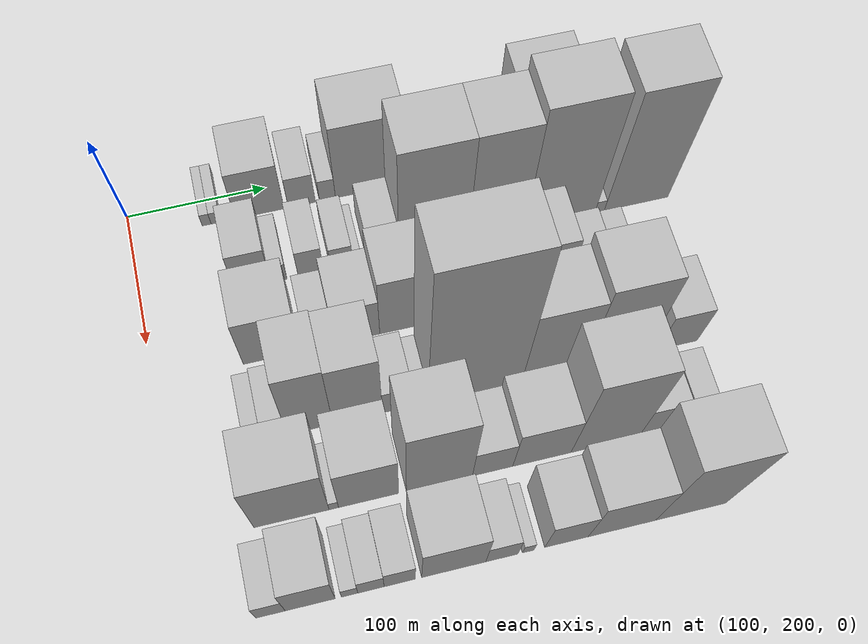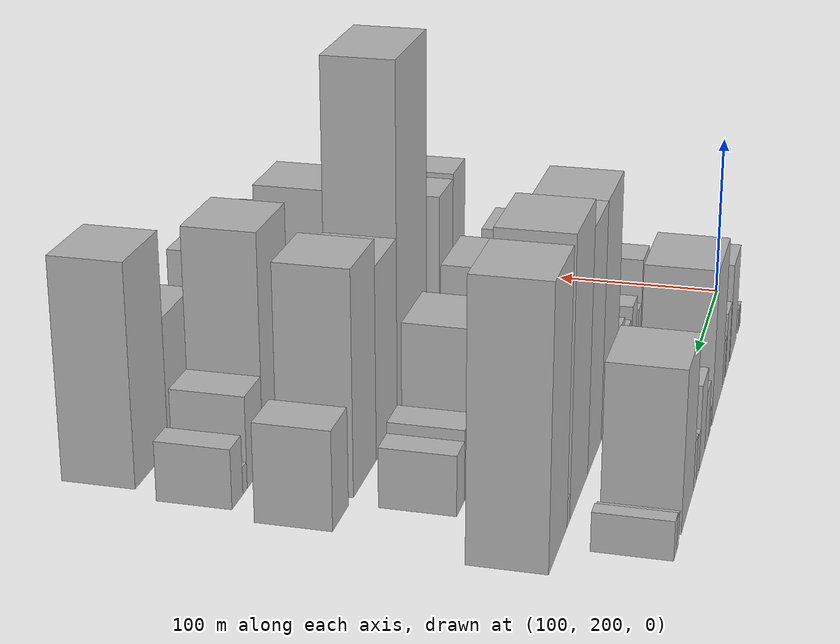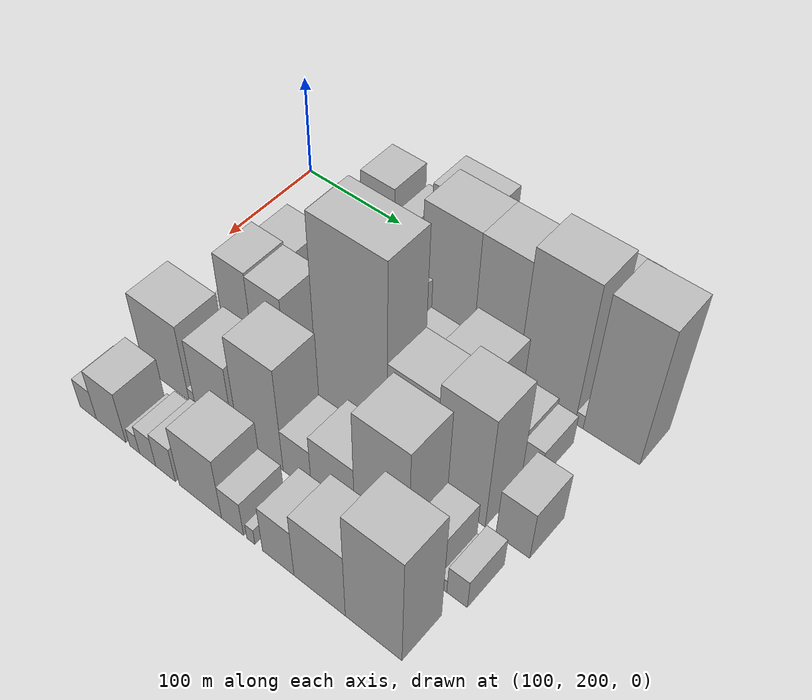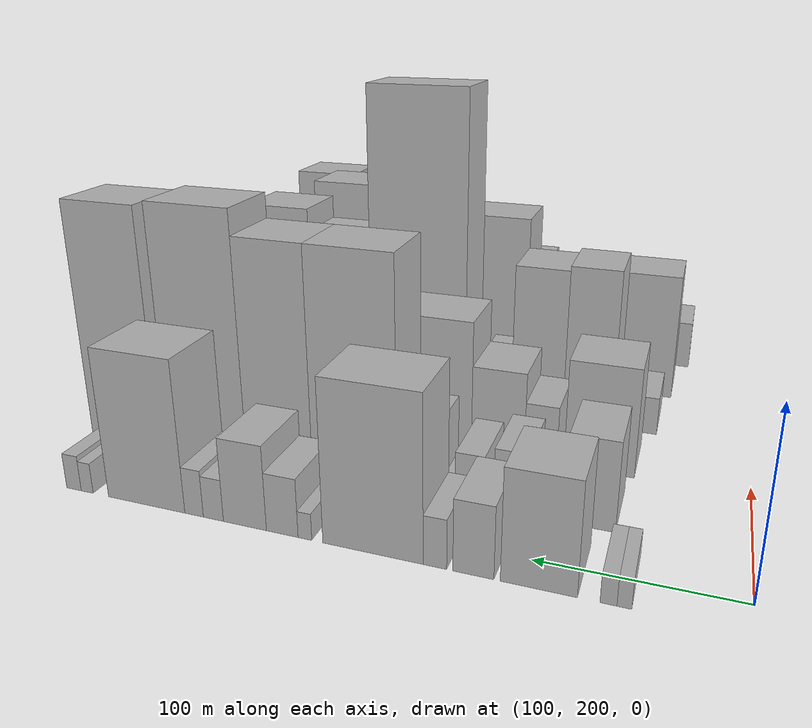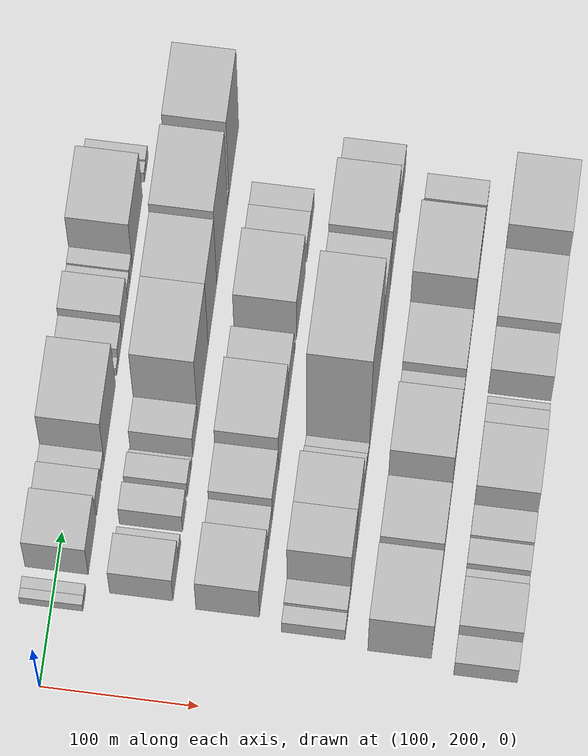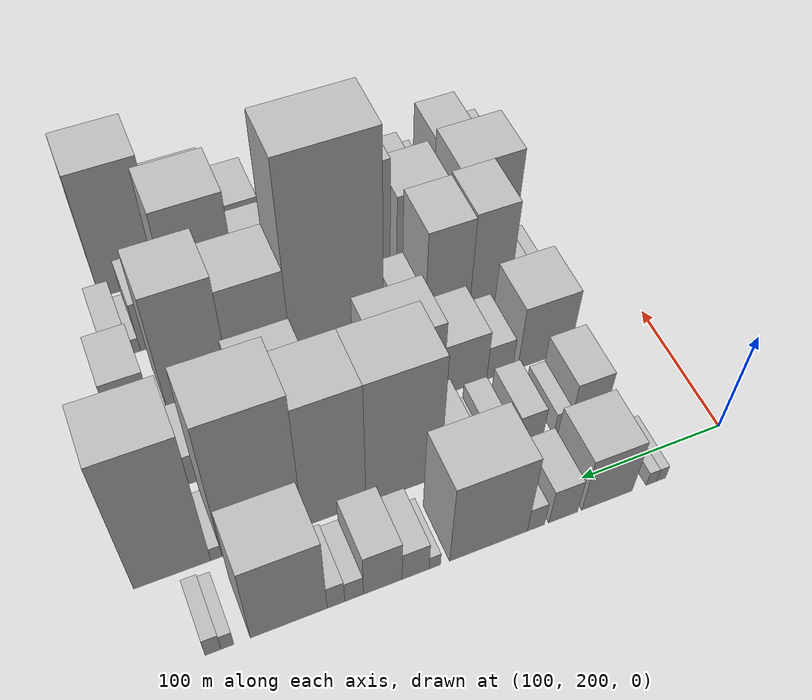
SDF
<sdf version="1.6">
 <world name="default">
  <model name="building_34">
   <static>1</static>
   <pose>100.0000 254.5305 0 0.000000 0.000000 0.000000</pose>
   <link name="link">
    <pose>0 0 7.50 0 0 0</pose>
    <collision name="collision"><geometry><box><size>40.0000 6.4407 15.0000</size></box></geometry></collision>
    <visual name="visual">
     <cast_shadows>0</cast_shadows>
     <geometry><box><size>40.0000 6.4407 15.0000</size></box></geometry>
     <material>
      <script>
       <uri>model://HANNAS_wall/materials/scripts</uri>
       <uri>model://HANNAS_wall/materials/textures</uri>
       <name>vrc/HANNAS_wall</name>
      </script>
     </material>
    </visual>
   </link>
  </model>
  <model name="building_35">
   <static>1</static>
   <pose>100.0000 261.4549 0 0.000000 0.000000 0.000000</pose>
   <link name="link">
    <pose>0 0 7.50 0 0 0</pose>
    <collision name="collision"><geometry><box><size>40.0000 7.4081 15.0000</size></box></geometry></collision>
    <visual name="visual">
     <cast_shadows>0</cast_shadows>
     <geometry><box><size>40.0000 7.4081 15.0000</size></box></geometry>
     <material>
      <script>
       <uri>model://HANNAS_wall/materials/scripts</uri>
       <uri>model://HANNAS_wall/materials/textures</uri>
       <name>vrc/HANNAS_wall</name>
      </script>
     </material>
    </visual>
   </link>
  </model>
  <model name="building_36">
   <static>1</static>
   <pose>100.0000 292.9028 0 0.000000 0.000000 0.000000</pose>
   <link name="link">
    <pose>0 0 30.00 0 0 0</pose>
    <collision name="collision"><geometry><box><size>40.0000 35.4877 60.0000</size></box></geometry></collision>
    <visual name="visual">
     <cast_shadows>0</cast_shadows>
     <geometry><box><size>40.0000 35.4877 60.0000</size></box></geometry>
     <material>
      <script>
       <uri>model://HANNAS_wall/materials/scripts</uri>
       <uri>model://HANNAS_wall/materials/textures</uri>
       <name>vrc/HANNAS_wall</name>
      </script>
     </material>
    </visual>
   </link>
  </model>
  <model name="building_37">
   <static>1</static>
   <pose>100.0000 323.5563 0 0.000000 0.000000 0.000000</pose>
   <link name="link">
    <pose>0 0 19.50 0 0 0</pose>
    <collision name="collision"><geometry><box><size>40.0000 19.8193 39.0000</size></box></geometry></collision>
    <visual name="visual">
     <cast_shadows>0</cast_shadows>
     <geometry><box><size>40.0000 19.8193 39.0000</size></box></geometry>
     <material>
      <script>
       <uri>model://HANNAS_wall/materials/scripts</uri>
       <uri>model://HANNAS_wall/materials/textures</uri>
       <name>vrc/HANNAS_wall</name>
      </script>
     </material>
    </visual>
   </link>
  </model>
  <model name="building_38">
   <static>1</static>
   <pose>100.0000 342.3255 0 0.000000 0.000000 0.000000</pose>
   <link name="link">
    <pose>0 0 13.50 0 0 0</pose>
    <collision name="collision"><geometry><box><size>40.0000 11.7192 27.0000</size></box></geometry></collision>
    <visual name="visual">
     <cast_shadows>0</cast_shadows>
     <geometry><box><size>40.0000 11.7192 27.0000</size></box></geometry>
     <material>
      <script>
       <uri>model://HANNAS_wall/materials/scripts</uri>
       <uri>model://HANNAS_wall/materials/textures</uri>
       <name>vrc/HANNAS_wall</name>
      </script>
     </material>
    </visual>
   </link>
  </model>
  <model name="building_39">
   <static>1</static>
   <pose>100.0000 374.2217 0 0.000000 0.000000 0.000000</pose>
   <link name="link">
    <pose>0 0 45.00 0 0 0</pose>
    <collision name="collision"><geometry><box><size>40.0000 52.0733 90.0000</size></box></geometry></collision>
    <visual name="visual">
     <cast_shadows>0</cast_shadows>
     <geometry><box><size>40.0000 52.0733 90.0000</size></box></geometry>
     <material>
      <script>
       <uri>model://HANNAS_wall/materials/scripts</uri>
       <uri>model://HANNAS_wall/materials/textures</uri>
       <name>vrc/HANNAS_wall</name>
      </script>
     </material>
    </visual>
   </link>
  </model>
  <model name="building_40">
   <static>1</static>
   <pose>100.0000 409.9997 0 0.000000 0.000000 0.000000</pose>
   <link name="link">
    <pose>0 0 7.50 0 0 0</pose>
    <collision name="collision"><geometry><box><size>40.0000 7.4827 15.0000</size></box></geometry></collision>
    <visual name="visual">
     <cast_shadows>0</cast_shadows>
     <geometry><box><size>40.0000 7.4827 15.0000</size></box></geometry>
     <material>
      <script>
       <uri>model://HANNAS_wall/materials/scripts</uri>
       <uri>model://HANNAS_wall/materials/textures</uri>
       <name>vrc/HANNAS_wall</name>
      </script>
     </material>
    </visual>
   </link>
  </model>
  <model name="building_41">
   <static>1</static>
   <pose>100.0000 422.5605 0 0.000000 0.000000 0.000000</pose>
   <link name="link">
    <pose>0 0 16.50 0 0 0</pose>
    <collision name="collision"><geometry><box><size>40.0000 17.6389 33.0000</size></box></geometry></collision>
    <visual name="visual">
     <cast_shadows>0</cast_shadows>
     <geometry><box><size>40.0000 17.6389 33.0000</size></box></geometry>
     <material>
      <script>
       <uri>model://HANNAS_wall/materials/scripts</uri>
       <uri>model://HANNAS_wall/materials/textures</uri>
       <name>vrc/HANNAS_wall</name>
      </script>
     </material>
    </visual>
   </link>
  </model>
  <model name="building_42">
   <static>1</static>
   <pose>100.0000 443.7260 0 0.000000 0.000000 0.000000</pose>
   <link name="link">
    <pose>0 0 24.00 0 0 0</pose>
    <collision name="collision"><geometry><box><size>40.0000 24.6920 48.0000</size></box></geometry></collision>
    <visual name="visual">
     <cast_shadows>0</cast_shadows>
     <geometry><box><size>40.0000 24.6920 48.0000</size></box></geometry>
     <material>
      <script>
       <uri>model://HANNAS_wall/materials/scripts</uri>
       <uri>model://HANNAS_wall/materials/textures</uri>
       <name>vrc/HANNAS_wall</name>
      </script>
     </material>
    </visual>
   </link>
  </model>
  <model name="building_43">
   <static>1</static>
   <pose>100.0000 461.9823 0 0.000000 0.000000 0.000000</pose>
   <link name="link">
    <pose>0 0 12.00 0 0 0</pose>
    <collision name="collision"><geometry><box><size>40.0000 11.8207 24.0000</size></box></geometry></collision>
    <visual name="visual">
     <cast_shadows>0</cast_shadows>
     <geometry><box><size>40.0000 11.8207 24.0000</size></box></geometry>
     <material>
      <script>
       <uri>model://HANNAS_wall/materials/scripts</uri>
       <uri>model://HANNAS_wall/materials/textures</uri>
       <name>vrc/HANNAS_wall</name>
      </script>
     </material>
    </visual>
   </link>
  </model>
  <model name="building_44">
   <static>1</static>
   <pose>100.0000 473.4352 0 0.000000 0.000000 0.000000</pose>
   <link name="link">
    <pose>0 0 13.50 0 0 0</pose>
    <collision name="collision"><geometry><box><size>40.0000 11.0850 27.0000</size></box></geometry></collision>
    <visual name="visual">
     <cast_shadows>0</cast_shadows>
     <geometry><box><size>40.0000 11.0850 27.0000</size></box></geometry>
     <material>
      <script>
       <uri>model://HANNAS_wall/materials/scripts</uri>
       <uri>model://HANNAS_wall/materials/textures</uri>
       <name>vrc/HANNAS_wall</name>
      </script>
     </material>
    </visual>
   </link>
  </model>
  <model name="building_45">
   <static>1</static>
   <pose>100.0000 502.7370 0 0.000000 0.000000 0.000000</pose>
   <link name="link">
    <pose>0 0 43.50 0 0 0</pose>
    <collision name="collision"><geometry><box><size>40.0000 47.5186 87.0000</size></box></geometry></collision>
    <visual name="visual">
     <cast_shadows>0</cast_shadows>
     <geometry><box><size>40.0000 47.5186 87.0000</size></box></geometry>
     <material>
      <script>
       <uri>model://HANNAS_wall/materials/scripts</uri>
       <uri>model://HANNAS_wall/materials/textures</uri>
       <name>vrc/HANNAS_wall</name>
      </script>
     </material>
    </visual>
   </link>
  </model>
  <model name="building_46">
   <static>1</static>
   <pose>100.0000 540.3720 0 0.000000 0.000000 0.000000</pose>
   <link name="link">
    <pose>0 0 9.00 0 0 0</pose>
    <collision name="collision"><geometry><box><size>40.0000 7.7514 18.0000</size></box></geometry></collision>
    <visual name="visual">
     <cast_shadows>0</cast_shadows>
     <geometry><box><size>40.0000 7.7514 18.0000</size></box></geometry>
     <material>
      <script>
       <uri>model://HANNAS_wall/materials/scripts</uri>
       <uri>model://HANNAS_wall/materials/textures</uri>
       <name>vrc/HANNAS_wall</name>
      </script>
     </material>
    </visual>
   </link>
  </model>
  <model name="building_47">
   <static>1</static>
   <pose>100.0000 549.0262 0 0.000000 0.000000 0.000000</pose>
   <link name="link">
    <pose>0 0 10.50 0 0 0</pose>
    <collision name="collision"><geometry><box><size>40.0000 9.5570 21.0000</size></box></geometry></collision>
    <visual name="visual">
     <cast_shadows>0</cast_shadows>
     <geometry><box><size>40.0000 9.5570 21.0000</size></box></geometry>
     <material>
      <script>
       <uri>model://HANNAS_wall/materials/scripts</uri>
       <uri>model://HANNAS_wall/materials/textures</uri>
       <name>vrc/HANNAS_wall</name>
      </script>
     </material>
    </visual>
   </link>
  </model>
  <model name="building_91">
   <static>1</static>
   <pose>155.0000 277.9467 0 0.000000 0.000000 0.000000</pose>
   <link name="link">
    <pose>0 0 25.50 0 0 0</pose>
    <collision name="collision"><geometry><box><size>40.0000 25.8244 51.0000</size></box></geometry></collision>
    <visual name="visual">
     <cast_shadows>0</cast_shadows>
     <geometry><box><size>40.0000 25.8244 51.0000</size></box></geometry>
     <material>
      <script>
       <uri>model://HANNAS_wall/materials/scripts</uri>
       <uri>model://HANNAS_wall/materials/textures</uri>
       <name>vrc/HANNAS_wall</name>
      </script>
     </material>
    </visual>
   </link>
  </model>
  <model name="building_92">
   <static>1</static>
   <pose>155.0000 296.4821 0 0.000000 0.000000 0.000000</pose>
   <link name="link">
    <pose>0 0 12.00 0 0 0</pose>
    <collision name="collision"><geometry><box><size>40.0000 11.2463 24.0000</size></box></geometry></collision>
    <visual name="visual">
     <cast_shadows>0</cast_shadows>
     <geometry><box><size>40.0000 11.2463 24.0000</size></box></geometry>
     <material>
      <script>
       <uri>model://HANNAS_wall/materials/scripts</uri>
       <uri>model://HANNAS_wall/materials/textures</uri>
       <name>vrc/HANNAS_wall</name>
      </script>
     </material>
    </visual>
   </link>
  </model>
  <model name="building_93">
   <static>1</static>
   <pose>155.0000 319.1369 0 0.000000 0.000000 0.000000</pose>
   <link name="link">
    <pose>0 0 18.00 0 0 0</pose>
    <collision name="collision"><geometry><box><size>40.0000 18.0633 36.0000</size></box></geometry></collision>
    <visual name="visual">
     <cast_shadows>0</cast_shadows>
     <geometry><box><size>40.0000 18.0633 36.0000</size></box></geometry>
     <material>
      <script>
       <uri>model://HANNAS_wall/materials/scripts</uri>
       <uri>model://HANNAS_wall/materials/textures</uri>
       <name>vrc/HANNAS_wall</name>
      </script>
     </material>
    </visual>
   </link>
  </model>
  <model name="building_94">
   <static>1</static>
   <pose>155.0000 341.1645 0 0.000000 0.000000 0.000000</pose>
   <link name="link">
    <pose>0 0 15.00 0 0 0</pose>
    <collision name="collision"><geometry><box><size>40.0000 15.9919 30.0000</size></box></geometry></collision>
    <visual name="visual">
     <cast_shadows>0</cast_shadows>
     <geometry><box><size>40.0000 15.9919 30.0000</size></box></geometry>
     <material>
      <script>
       <uri>model://HANNAS_wall/materials/scripts</uri>
       <uri>model://HANNAS_wall/materials/textures</uri>
       <name>vrc/HANNAS_wall</name>
      </script>
     </material>
    </visual>
   </link>
  </model>
  <model name="building_95">
   <static>1</static>
   <pose>155.0000 352.2150 0 0.000000 0.000000 0.000000</pose>
   <link name="link">
    <pose>0 0 7.50 0 0 0</pose>
    <collision name="collision"><geometry><box><size>40.0000 6.1090 15.0000</size></box></geometry></collision>
    <visual name="visual">
     <cast_shadows>0</cast_shadows>
     <geometry><box><size>40.0000 6.1090 15.0000</size></box></geometry>
     <material>
      <script>
       <uri>model://HANNAS_wall/materials/scripts</uri>
       <uri>model://HANNAS_wall/materials/textures</uri>
       <name>vrc/HANNAS_wall</name>
      </script>
     </material>
    </visual>
   </link>
  </model>
  <model name="building_96">
   <static>1</static>
   <pose>155.0000 370.6481 0 0.000000 0.000000 0.000000</pose>
   <link name="link">
    <pose>0 0 21.00 0 0 0</pose>
    <collision name="collision"><geometry><box><size>40.0000 22.7573 42.0000</size></box></geometry></collision>
    <visual name="visual">
     <cast_shadows>0</cast_shadows>
     <geometry><box><size>40.0000 22.7573 42.0000</size></box></geometry>
     <material>
      <script>
       <uri>model://HANNAS_wall/materials/scripts</uri>
       <uri>model://HANNAS_wall/materials/textures</uri>
       <name>vrc/HANNAS_wall</name>
      </script>
     </material>
    </visual>
   </link>
  </model>
  <model name="building_97">
   <static>1</static>
   <pose>155.0000 407.1984 0 0.000000 0.000000 0.000000</pose>
   <link name="link">
    <pose>0 0 67.50 0 0 0</pose>
    <collision name="collision"><geometry><box><size>40.0000 50.3432 135.0000</size></box></geometry></collision>
    <visual name="visual">
     <cast_shadows>0</cast_shadows>
     <geometry><box><size>40.0000 50.3432 135.0000</size></box></geometry>
     <material>
      <script>
       <uri>model://HANNAS_wall/materials/scripts</uri>
       <uri>model://HANNAS_wall/materials/textures</uri>
       <name>vrc/HANNAS_wall</name>
      </script>
     </material>
    </visual>
   </link>
  </model>
  <model name="building_98">
   <static>1</static>
   <pose>155.0000 453.1962 0 0.000000 0.000000 0.000000</pose>
   <link name="link">
    <pose>0 0 67.50 0 0 0</pose>
    <collision name="collision"><geometry><box><size>40.0000 41.6526 135.0000</size></box></geometry></collision>
    <visual name="visual">
     <cast_shadows>0</cast_shadows>
     <geometry><box><size>40.0000 41.6526 135.0000</size></box></geometry>
     <material>
      <script>
       <uri>model://HANNAS_wall/materials/scripts</uri>
       <uri>model://HANNAS_wall/materials/textures</uri>
       <name>vrc/HANNAS_wall</name>
      </script>
     </material>
    </visual>
   </link>
  </model>
  <model name="building_99">
   <static>1</static>
   <pose>155.0000 500.0469 0 0.000000 0.000000 0.000000</pose>
   <link name="link">
    <pose>0 0 75.00 0 0 0</pose>
    <collision name="collision"><geometry><box><size>40.0000 52.0488 150.0000</size></box></geometry></collision>
    <visual name="visual">
     <cast_shadows>0</cast_shadows>
     <geometry><box><size>40.0000 52.0488 150.0000</size></box></geometry>
     <material>
      <script>
       <uri>model://HANNAS_wall/materials/scripts</uri>
       <uri>model://HANNAS_wall/materials/textures</uri>
       <name>vrc/HANNAS_wall</name>
      </script>
     </material>
    </visual>
   </link>
  </model>
  <model name="building_100">
   <static>1</static>
   <pose>155.0000 529.6043 0 0.000000 0.000000 0.000000</pose>
   <link name="link">
    <pose>0 0 7.50 0 0 0</pose>
    <collision name="collision"><geometry><box><size>40.0000 7.0660 15.0000</size></box></geometry></collision>
    <visual name="visual">
     <cast_shadows>0</cast_shadows>
     <geometry><box><size>40.0000 7.0660 15.0000</size></box></geometry>
     <material>
      <script>
       <uri>model://HANNAS_wall/materials/scripts</uri>
       <uri>model://HANNAS_wall/materials/textures</uri>
       <name>vrc/HANNAS_wall</name>
      </script>
     </material>
    </visual>
   </link>
  </model>
  <model name="building_101">
   <static>1</static>
   <pose>155.0000 557.0498 0 0.000000 0.000000 0.000000</pose>
   <link name="link">
    <pose>0 0 73.50 0 0 0</pose>
    <collision name="collision"><geometry><box><size>40.0000 47.8251 147.0000</size></box></geometry></collision>
    <visual name="visual">
     <cast_shadows>0</cast_shadows>
     <geometry><box><size>40.0000 47.8251 147.0000</size></box></geometry>
     <material>
      <script>
       <uri>model://HANNAS_wall/materials/scripts</uri>
       <uri>model://HANNAS_wall/materials/textures</uri>
       <name>vrc/HANNAS_wall</name>
      </script>
     </material>
    </visual>
   </link>
  </model>
  <model name="building_143">
   <static>1</static>
   <pose>210.0000 281.2400 0 0.000000 0.000000 0.000000</pose>
   <link name="link">
    <pose>0 0 33.00 0 0 0</pose>
    <collision name="collision"><geometry><box><size>40.0000 39.5124 66.0000</size></box></geometry></collision>
    <visual name="visual">
     <cast_shadows>0</cast_shadows>
     <geometry><box><size>40.0000 39.5124 66.0000</size></box></geometry>
     <material>
      <script>
       <uri>model://HANNAS_wall/materials/scripts</uri>
       <uri>model://HANNAS_wall/materials/textures</uri>
       <name>vrc/HANNAS_wall</name>
      </script>
     </material>
    </visual>
   </link>
  </model>
  <model name="building_144">
   <static>1</static>
   <pose>210.0000 314.5279 0 0.000000 0.000000 0.000000</pose>
   <link name="link">
    <pose>0 0 18.00 0 0 0</pose>
    <collision name="collision"><geometry><box><size>40.0000 19.0634 36.0000</size></box></geometry></collision>
    <visual name="visual">
     <cast_shadows>0</cast_shadows>
     <geometry><box><size>40.0000 19.0634 36.0000</size></box></geometry>
     <material>
      <script>
       <uri>model://HANNAS_wall/materials/scripts</uri>
       <uri>model://HANNAS_wall/materials/textures</uri>
       <name>vrc/HANNAS_wall</name>
      </script>
     </material>
    </visual>
   </link>
  </model>
  <model name="building_145">
   <static>1</static>
   <pose>210.0000 339.9073 0 0.000000 0.000000 0.000000</pose>
   <link name="link">
    <pose>0 0 27.00 0 0 0</pose>
    <collision name="collision"><geometry><box><size>40.0000 31.6955 54.0000</size></box></geometry></collision>
    <visual name="visual">
     <cast_shadows>0</cast_shadows>
     <geometry><box><size>40.0000 31.6955 54.0000</size></box></geometry>
     <material>
      <script>
       <uri>model://HANNAS_wall/materials/scripts</uri>
       <uri>model://HANNAS_wall/materials/textures</uri>
       <name>vrc/HANNAS_wall</name>
      </script>
     </material>
    </visual>
   </link>
  </model>
  <model name="building_146">
   <static>1</static>
   <pose>210.0000 379.6658 0 0.000000 0.000000 0.000000</pose>
   <link name="link">
    <pose>0 0 40.50 0 0 0</pose>
    <collision name="collision"><geometry><box><size>40.0000 47.8214 81.0000</size></box></geometry></collision>
    <visual name="visual">
     <cast_shadows>0</cast_shadows>
     <geometry><box><size>40.0000 47.8214 81.0000</size></box></geometry>
     <material>
      <script>
       <uri>model://HANNAS_wall/materials/scripts</uri>
       <uri>model://HANNAS_wall/materials/textures</uri>
       <name>vrc/HANNAS_wall</name>
      </script>
     </material>
    </visual>
   </link>
  </model>
  <model name="building_147">
   <static>1</static>
   <pose>210.0000 418.2549 0 0.000000 0.000000 0.000000</pose>
   <link name="link">
    <pose>0 0 25.50 0 0 0</pose>
    <collision name="collision"><geometry><box><size>40.0000 29.3568 51.0000</size></box></geometry></collision>
    <visual name="visual">
     <cast_shadows>0</cast_shadows>
     <geometry><box><size>40.0000 29.3568 51.0000</size></box></geometry>
     <material>
      <script>
       <uri>model://HANNAS_wall/materials/scripts</uri>
       <uri>model://HANNAS_wall/materials/textures</uri>
       <name>vrc/HANNAS_wall</name>
      </script>
     </material>
    </visual>
   </link>
  </model>
  <model name="building_148">
   <static>1</static>
   <pose>210.0000 436.0573 0 0.000000 0.000000 0.000000</pose>
   <link name="link">
    <pose>0 0 7.50 0 0 0</pose>
    <collision name="collision"><geometry><box><size>40.0000 6.2479 15.0000</size></box></geometry></collision>
    <visual name="visual">
     <cast_shadows>0</cast_shadows>
     <geometry><box><size>40.0000 6.2479 15.0000</size></box></geometry>
     <material>
      <script>
       <uri>model://HANNAS_wall/materials/scripts</uri>
       <uri>model://HANNAS_wall/materials/textures</uri>
       <name>vrc/HANNAS_wall</name>
      </script>
     </material>
    </visual>
   </link>
  </model>
  <model name="building_149">
   <static>1</static>
   <pose>210.0000 466.2391 0 0.000000 0.000000 0.000000</pose>
   <link name="link">
    <pose>0 0 40.50 0 0 0</pose>
    <collision name="collision"><geometry><box><size>40.0000 44.1155 81.0000</size></box></geometry></collision>
    <visual name="visual">
     <cast_shadows>0</cast_shadows>
     <geometry><box><size>40.0000 44.1155 81.0000</size></box></geometry>
     <material>
      <script>
       <uri>model://HANNAS_wall/materials/scripts</uri>
       <uri>model://HANNAS_wall/materials/textures</uri>
       <name>vrc/HANNAS_wall</name>
      </script>
     </material>
    </visual>
   </link>
  </model>
  <model name="building_150">
   <static>1</static>
   <pose>210.0000 506.9416 0 0.000000 0.000000 0.000000</pose>
   <link name="link">
    <pose>0 0 19.50 0 0 0</pose>
    <collision name="collision"><geometry><box><size>40.0000 21.2896 39.0000</size></box></geometry></collision>
    <visual name="visual">
     <cast_shadows>0</cast_shadows>
     <geometry><box><size>40.0000 21.2896 39.0000</size></box></geometry>
     <material>
      <script>
       <uri>model://HANNAS_wall/materials/scripts</uri>
       <uri>model://HANNAS_wall/materials/textures</uri>
       <name>vrc/HANNAS_wall</name>
      </script>
     </material>
    </visual>
   </link>
  </model>
  <model name="building_151">
   <static>1</static>
   <pose>210.0000 526.1435 0 0.000000 0.000000 0.000000</pose>
   <link name="link">
    <pose>0 0 16.50 0 0 0</pose>
    <collision name="collision"><geometry><box><size>40.0000 17.1141 33.0000</size></box></geometry></collision>
    <visual name="visual">
     <cast_shadows>0</cast_shadows>
     <geometry><box><size>40.0000 17.1141 33.0000</size></box></geometry>
     <material>
      <script>
       <uri>model://HANNAS_wall/materials/scripts</uri>
       <uri>model://HANNAS_wall/materials/textures</uri>
       <name>vrc/HANNAS_wall</name>
      </script>
     </material>
    </visual>
   </link>
  </model>
  <model name="building_199">
   <static>1</static>
   <pose>265.0000 259.6278 0 0.000000 0.000000 0.000000</pose>
   <link name="link">
    <pose>0 0 12.00 0 0 0</pose>
    <collision name="collision"><geometry><box><size>40.0000 11.5869 24.0000</size></box></geometry></collision>
    <visual name="visual">
     <cast_shadows>0</cast_shadows>
     <geometry><box><size>40.0000 11.5869 24.0000</size></box></geometry>
     <material>
      <script>
       <uri>model://HANNAS_wall/materials/scripts</uri>
       <uri>model://HANNAS_wall/materials/textures</uri>
       <name>vrc/HANNAS_wall</name>
      </script>
     </material>
    </visual>
   </link>
  </model>
  <model name="building_200">
   <static>1</static>
   <pose>265.0000 273.1844 0 0.000000 0.000000 0.000000</pose>
   <link name="link">
    <pose>0 0 15.00 0 0 0</pose>
    <collision name="collision"><geometry><box><size>40.0000 15.5263 30.0000</size></box></geometry></collision>
    <visual name="visual">
     <cast_shadows>0</cast_shadows>
     <geometry><box><size>40.0000 15.5263 30.0000</size></box></geometry>
     <material>
      <script>
       <uri>model://HANNAS_wall/materials/scripts</uri>
       <uri>model://HANNAS_wall/materials/textures</uri>
       <name>vrc/HANNAS_wall</name>
      </script>
     </material>
    </visual>
   </link>
  </model>
  <model name="building_201">
   <static>1</static>
   <pose>265.0000 296.2826 0 0.000000 0.000000 0.000000</pose>
   <link name="link">
    <pose>0 0 51.00 0 0 0</pose>
    <collision name="collision"><geometry><box><size>40.0000 30.6699 102.0000</size></box></geometry></collision>
    <visual name="visual">
     <cast_shadows>0</cast_shadows>
     <geometry><box><size>40.0000 30.6699 102.0000</size></box></geometry>
     <material>
      <script>
       <uri>model://HANNAS_wall/materials/scripts</uri>
       <uri>model://HANNAS_wall/materials/textures</uri>
       <name>vrc/HANNAS_wall</name>
      </script>
     </material>
    </visual>
   </link>
  </model>
  <model name="building_202">
   <static>1</static>
   <pose>265.0000 328.3271 0 0.000000 0.000000 0.000000</pose>
   <link name="link">
    <pose>0 0 49.50 0 0 0</pose>
    <collision name="collision"><geometry><box><size>40.0000 33.4192 99.0000</size></box></geometry></collision>
    <visual name="visual">
     <cast_shadows>0</cast_shadows>
     <geometry><box><size>40.0000 33.4192 99.0000</size></box></geometry>
     <material>
      <script>
       <uri>model://HANNAS_wall/materials/scripts</uri>
       <uri>model://HANNAS_wall/materials/textures</uri>
       <name>vrc/HANNAS_wall</name>
      </script>
     </material>
    </visual>
   </link>
  </model>
  <model name="building_203">
   <static>1</static>
   <pose>265.0000 355.3910 0 0.000000 0.000000 0.000000</pose>
   <link name="link">
    <pose>0 0 18.00 0 0 0</pose>
    <collision name="collision"><geometry><box><size>40.0000 20.7087 36.0000</size></box></geometry></collision>
    <visual name="visual">
     <cast_shadows>0</cast_shadows>
     <geometry><box><size>40.0000 20.7087 36.0000</size></box></geometry>
     <material>
      <script>
       <uri>model://HANNAS_wall/materials/scripts</uri>
       <uri>model://HANNAS_wall/materials/textures</uri>
       <name>vrc/HANNAS_wall</name>
      </script>
     </material>
    </visual>
   </link>
  </model>
  <model name="building_204">
   <static>1</static>
   <pose>265.0000 370.7972 0 0.000000 0.000000 0.000000</pose>
   <link name="link">
    <pose>0 0 12.00 0 0 0</pose>
    <collision name="collision"><geometry><box><size>40.0000 10.1036 24.0000</size></box></geometry></collision>
    <visual name="visual">
     <cast_shadows>0</cast_shadows>
     <geometry><box><size>40.0000 10.1036 24.0000</size></box></geometry>
     <material>
      <script>
       <uri>model://HANNAS_wall/materials/scripts</uri>
       <uri>model://HANNAS_wall/materials/textures</uri>
       <name>vrc/HANNAS_wall</name>
      </script>
     </material>
    </visual>
   </link>
  </model>
  <model name="building_205">
   <static>1</static>
   <pose>265.0000 408.3681 0 0.000000 0.000000 0.000000</pose>
   <link name="link">
    <pose>0 0 102.00 0 0 0</pose>
    <collision name="collision"><geometry><box><size>40.0000 65.0383 204.0000</size></box></geometry></collision>
    <visual name="visual">
     <cast_shadows>0</cast_shadows>
     <geometry><box><size>40.0000 65.0383 204.0000</size></box></geometry>
     <material>
      <script>
       <uri>model://HANNAS_wall/materials/scripts</uri>
       <uri>model://HANNAS_wall/materials/textures</uri>
       <name>vrc/HANNAS_wall</name>
      </script>
     </material>
    </visual>
   </link>
  </model>
  <model name="building_206">
   <static>1</static>
   <pose>265.0000 462.3944 0 0.000000 0.000000 0.000000</pose>
   <link name="link">
    <pose>0 0 54.00 0 0 0</pose>
    <collision name="collision"><geometry><box><size>40.0000 43.0142 108.0000</size></box></geometry></collision>
    <visual name="visual">
     <cast_shadows>0</cast_shadows>
     <geometry><box><size>40.0000 43.0142 108.0000</size></box></geometry>
     <material>
      <script>
       <uri>model://HANNAS_wall/materials/scripts</uri>
       <uri>model://HANNAS_wall/materials/textures</uri>
       <name>vrc/HANNAS_wall</name>
      </script>
     </material>
    </visual>
   </link>
  </model>
  <model name="building_207">
   <static>1</static>
   <pose>265.0000 505.7202 0 0.000000 0.000000 0.000000</pose>
   <link name="link">
    <pose>0 0 61.50 0 0 0</pose>
    <collision name="collision"><geometry><box><size>40.0000 43.6375 123.0000</size></box></geometry></collision>
    <visual name="visual">
     <cast_shadows>0</cast_shadows>
     <geometry><box><size>40.0000 43.6375 123.0000</size></box></geometry>
     <material>
      <script>
       <uri>model://HANNAS_wall/materials/scripts</uri>
       <uri>model://HANNAS_wall/materials/textures</uri>
       <name>vrc/HANNAS_wall</name>
      </script>
     </material>
    </visual>
   </link>
  </model>
  <model name="building_208">
   <static>1</static>
   <pose>265.0000 550.5265 0 0.000000 0.000000 0.000000</pose>
   <link name="link">
    <pose>0 0 27.00 0 0 0</pose>
    <collision name="collision"><geometry><box><size>40.0000 27.9751 54.0000</size></box></geometry></collision>
    <visual name="visual">
     <cast_shadows>0</cast_shadows>
     <geometry><box><size>40.0000 27.9751 54.0000</size></box></geometry>
     <material>
      <script>
       <uri>model://HANNAS_wall/materials/scripts</uri>
       <uri>model://HANNAS_wall/materials/textures</uri>
       <name>vrc/HANNAS_wall</name>
      </script>
     </material>
    </visual>
   </link>
  </model>
  <model name="building_255">
   <static>1</static>
   <pose>320.0000 273.1300 0 0.000000 0.000000 0.000000</pose>
   <link name="link">
    <pose>0 0 42.00 0 0 0</pose>
    <collision name="collision"><geometry><box><size>40.0000 48.6546 84.0000</size></box></geometry></collision>
    <visual name="visual">
     <cast_shadows>0</cast_shadows>
     <geometry><box><size>40.0000 48.6546 84.0000</size></box></geometry>
     <material>
      <script>
       <uri>model://HANNAS_wall/materials/scripts</uri>
       <uri>model://HANNAS_wall/materials/textures</uri>
       <name>vrc/HANNAS_wall</name>
      </script>
     </material>
    </visual>
   </link>
  </model>
  <model name="building_256">
   <static>1</static>
   <pose>320.0000 300.5435 0 0.000000 0.000000 0.000000</pose>
   <link name="link">
    <pose>0 0 7.50 0 0 0</pose>
    <collision name="collision"><geometry><box><size>40.0000 6.1724 15.0000</size></box></geometry></collision>
    <visual name="visual">
     <cast_shadows>0</cast_shadows>
     <geometry><box><size>40.0000 6.1724 15.0000</size></box></geometry>
     <material>
      <script>
       <uri>model://HANNAS_wall/materials/scripts</uri>
       <uri>model://HANNAS_wall/materials/textures</uri>
       <name>vrc/HANNAS_wall</name>
      </script>
     </material>
    </visual>
   </link>
  </model>
  <model name="building_257">
   <static>1</static>
   <pose>320.0000 323.3587 0 0.000000 0.000000 0.000000</pose>
   <link name="link">
    <pose>0 0 37.50 0 0 0</pose>
    <collision name="collision"><geometry><box><size>40.0000 39.4580 75.0000</size></box></geometry></collision>
    <visual name="visual">
     <cast_shadows>0</cast_shadows>
     <geometry><box><size>40.0000 39.4580 75.0000</size></box></geometry>
     <material>
      <script>
       <uri>model://HANNAS_wall/materials/scripts</uri>
       <uri>model://HANNAS_wall/materials/textures</uri>
       <name>vrc/HANNAS_wall</name>
      </script>
     </material>
    </visual>
   </link>
  </model>
  <model name="building_258">
   <static>1</static>
   <pose>320.0000 370.0550 0 0.000000 0.000000 0.000000</pose>
   <link name="link">
    <pose>0 0 57.00 0 0 0</pose>
    <collision name="collision"><geometry><box><size>40.0000 43.9347 114.0000</size></box></geometry></collision>
    <visual name="visual">
     <cast_shadows>0</cast_shadows>
     <geometry><box><size>40.0000 43.9347 114.0000</size></box></geometry>
     <material>
      <script>
       <uri>model://HANNAS_wall/materials/scripts</uri>
       <uri>model://HANNAS_wall/materials/textures</uri>
       <name>vrc/HANNAS_wall</name>
      </script>
     </material>
    </visual>
   </link>
  </model>
  <model name="building_259">
   <static>1</static>
   <pose>320.0000 405.5257 0 0.000000 0.000000 0.000000</pose>
   <link name="link">
    <pose>0 0 24.00 0 0 0</pose>
    <collision name="collision"><geometry><box><size>40.0000 27.0067 48.0000</size></box></geometry></collision>
    <visual name="visual">
     <cast_shadows>0</cast_shadows>
     <geometry><box><size>40.0000 27.0067 48.0000</size></box></geometry>
     <material>
      <script>
       <uri>model://HANNAS_wall/materials/scripts</uri>
       <uri>model://HANNAS_wall/materials/textures</uri>
       <name>vrc/HANNAS_wall</name>
      </script>
     </material>
    </visual>
   </link>
  </model>
  <model name="building_260">
   <static>1</static>
   <pose>320.0000 438.7214 0 0.000000 0.000000 0.000000</pose>
   <link name="link">
    <pose>0 0 33.00 0 0 0</pose>
    <collision name="collision"><geometry><box><size>40.0000 39.3847 66.0000</size></box></geometry></collision>
    <visual name="visual">
     <cast_shadows>0</cast_shadows>
     <geometry><box><size>40.0000 39.3847 66.0000</size></box></geometry>
     <material>
      <script>
       <uri>model://HANNAS_wall/materials/scripts</uri>
       <uri>model://HANNAS_wall/materials/textures</uri>
       <name>vrc/HANNAS_wall</name>
      </script>
     </material>
    </visual>
   </link>
  </model>
  <model name="building_261">
   <static>1</static>
   <pose>320.0000 481.6697 0 0.000000 0.000000 0.000000</pose>
   <link name="link">
    <pose>0 0 64.50 0 0 0</pose>
    <collision name="collision"><geometry><box><size>40.0000 46.5121 129.0000</size></box></geometry></collision>
    <visual name="visual">
     <cast_shadows>0</cast_shadows>
     <geometry><box><size>40.0000 46.5121 129.0000</size></box></geometry>
     <material>
      <script>
       <uri>model://HANNAS_wall/materials/scripts</uri>
       <uri>model://HANNAS_wall/materials/textures</uri>
       <name>vrc/HANNAS_wall</name>
      </script>
     </material>
    </visual>
   </link>
  </model>
  <model name="building_262">
   <static>1</static>
   <pose>320.0000 517.8912 0 0.000000 0.000000 0.000000</pose>
   <link name="link">
    <pose>0 0 25.50 0 0 0</pose>
    <collision name="collision"><geometry><box><size>40.0000 25.9309 51.0000</size></box></geometry></collision>
    <visual name="visual">
     <cast_shadows>0</cast_shadows>
     <geometry><box><size>40.0000 25.9309 51.0000</size></box></geometry>
     <material>
      <script>
       <uri>model://HANNAS_wall/materials/scripts</uri>
       <uri>model://HANNAS_wall/materials/textures</uri>
       <name>vrc/HANNAS_wall</name>
      </script>
     </material>
    </visual>
   </link>
  </model>
  <model name="building_263">
   <static>1</static>
   <pose>320.0000 534.2663 0 0.000000 0.000000 0.000000</pose>
   <link name="link">
    <pose>0 0 7.50 0 0 0</pose>
    <collision name="collision"><geometry><box><size>40.0000 6.8191 15.0000</size></box></geometry></collision>
    <visual name="visual">
     <cast_shadows>0</cast_shadows>
     <geometry><box><size>40.0000 6.8191 15.0000</size></box></geometry>
     <material>
      <script>
       <uri>model://HANNAS_wall/materials/scripts</uri>
       <uri>model://HANNAS_wall/materials/textures</uri>
       <name>vrc/HANNAS_wall</name>
      </script>
     </material>
    </visual>
   </link>
  </model>
  <model name="building_264">
   <static>1</static>
   <pose>320.0000 546.0903 0 0.000000 0.000000 0.000000</pose>
   <link name="link">
    <pose>0 0 16.50 0 0 0</pose>
    <collision name="collision"><geometry><box><size>40.0000 16.8290 33.0000</size></box></geometry></collision>
    <visual name="visual">
     <cast_shadows>0</cast_shadows>
     <geometry><box><size>40.0000 16.8290 33.0000</size></box></geometry>
     <material>
      <script>
       <uri>model://HANNAS_wall/materials/scripts</uri>
       <uri>model://HANNAS_wall/materials/textures</uri>
       <name>vrc/HANNAS_wall</name>
      </script>
     </material>
    </visual>
   </link>
  </model>
  <model name="building_302">
   <static>1</static>
   <pose>375.0000 249.3552 0 0.000000 0.000000 0.000000</pose>
   <link name="link">
    <pose>0 0 16.50 0 0 0</pose>
    <collision name="collision"><geometry><box><size>40.0000 18.2242 33.0000</size></box></geometry></collision>
    <visual name="visual">
     <cast_shadows>0</cast_shadows>
     <geometry><box><size>40.0000 18.2242 33.0000</size></box></geometry>
     <material>
      <script>
       <uri>model://HANNAS_wall/materials/scripts</uri>
       <uri>model://HANNAS_wall/materials/textures</uri>
       <name>vrc/HANNAS_wall</name>
      </script>
     </material>
    </visual>
   </link>
  </model>
  <model name="building_303">
   <static>1</static>
   <pose>375.0000 274.1437 0 0.000000 0.000000 0.000000</pose>
   <link name="link">
    <pose>0 0 28.50 0 0 0</pose>
    <collision name="collision"><geometry><box><size>40.0000 31.3527 57.0000</size></box></geometry></collision>
    <visual name="visual">
     <cast_shadows>0</cast_shadows>
     <geometry><box><size>40.0000 31.3527 57.0000</size></box></geometry>
     <material>
      <script>
       <uri>model://HANNAS_wall/materials/scripts</uri>
       <uri>model://HANNAS_wall/materials/textures</uri>
       <name>vrc/HANNAS_wall</name>
      </script>
     </material>
    </visual>
   </link>
  </model>
  <model name="building_304">
   <static>1</static>
   <pose>375.0000 298.9762 0 0.000000 0.000000 0.000000</pose>
   <link name="link">
    <pose>0 0 10.50 0 0 0</pose>
    <collision name="collision"><geometry><box><size>40.0000 10.3123 21.0000</size></box></geometry></collision>
    <visual name="visual">
     <cast_shadows>0</cast_shadows>
     <geometry><box><size>40.0000 10.3123 21.0000</size></box></geometry>
     <material>
      <script>
       <uri>model://HANNAS_wall/materials/scripts</uri>
       <uri>model://HANNAS_wall/materials/textures</uri>
       <name>vrc/HANNAS_wall</name>
      </script>
     </material>
    </visual>
   </link>
  </model>
  <model name="building_305">
   <static>1</static>
   <pose>375.0000 312.4984 0 0.000000 0.000000 0.000000</pose>
   <link name="link">
    <pose>0 0 16.50 0 0 0</pose>
    <collision name="collision"><geometry><box><size>40.0000 16.7322 33.0000</size></box></geometry></collision>
    <visual name="visual">
     <cast_shadows>0</cast_shadows>
     <geometry><box><size>40.0000 16.7322 33.0000</size></box></geometry>
     <material>
      <script>
       <uri>model://HANNAS_wall/materials/scripts</uri>
       <uri>model://HANNAS_wall/materials/textures</uri>
       <name>vrc/HANNAS_wall</name>
      </script>
     </material>
    </visual>
   </link>
  </model>
  <model name="building_306">
   <static>1</static>
   <pose>375.0000 330.8156 0 0.000000 0.000000 0.000000</pose>
   <link name="link">
    <pose>0 0 19.50 0 0 0</pose>
    <collision name="collision"><geometry><box><size>40.0000 19.9020 39.0000</size></box></geometry></collision>
    <visual name="visual">
     <cast_shadows>0</cast_shadows>
     <geometry><box><size>40.0000 19.9020 39.0000</size></box></geometry>
     <material>
      <script>
       <uri>model://HANNAS_wall/materials/scripts</uri>
       <uri>model://HANNAS_wall/materials/textures</uri>
       <name>vrc/HANNAS_wall</name>
      </script>
     </material>
    </visual>
   </link>
  </model>
  <model name="building_307">
   <static>1</static>
   <pose>375.0000 365.4545 0 0.000000 0.000000 0.000000</pose>
   <link name="link">
    <pose>0 0 34.50 0 0 0</pose>
    <collision name="collision"><geometry><box><size>40.0000 41.3759 69.0000</size></box></geometry></collision>
    <visual name="visual">
     <cast_shadows>0</cast_shadows>
     <geometry><box><size>40.0000 41.3759 69.0000</size></box></geometry>
     <material>
      <script>
       <uri>model://HANNAS_wall/materials/scripts</uri>
       <uri>model://HANNAS_wall/materials/textures</uri>
       <name>vrc/HANNAS_wall</name>
      </script>
     </material>
    </visual>
   </link>
  </model>
  <model name="building_308">
   <static>1</static>
   <pose>375.0000 396.5728 0 0.000000 0.000000 0.000000</pose>
   <link name="link">
    <pose>0 0 19.50 0 0 0</pose>
    <collision name="collision"><geometry><box><size>40.0000 20.8608 39.0000</size></box></geometry></collision>
    <visual name="visual">
     <cast_shadows>0</cast_shadows>
     <geometry><box><size>40.0000 20.8608 39.0000</size></box></geometry>
     <material>
      <script>
       <uri>model://HANNAS_wall/materials/scripts</uri>
       <uri>model://HANNAS_wall/materials/textures</uri>
       <name>vrc/HANNAS_wall</name>
      </script>
     </material>
    </visual>
   </link>
  </model>
  <model name="building_309">
   <static>1</static>
   <pose>375.0000 413.7911 0 0.000000 0.000000 0.000000</pose>
   <link name="link">
    <pose>0 0 9.00 0 0 0</pose>
    <collision name="collision"><geometry><box><size>40.0000 7.5757 18.0000</size></box></geometry></collision>
    <visual name="visual">
     <cast_shadows>0</cast_shadows>
     <geometry><box><size>40.0000 7.5757 18.0000</size></box></geometry>
     <material>
      <script>
       <uri>model://HANNAS_wall/materials/scripts</uri>
       <uri>model://HANNAS_wall/materials/textures</uri>
       <name>vrc/HANNAS_wall</name>
      </script>
     </material>
    </visual>
   </link>
  </model>
  <model name="building_310">
   <static>1</static>
   <pose>375.0000 438.8886 0 0.000000 0.000000 0.000000</pose>
   <link name="link">
    <pose>0 0 27.00 0 0 0</pose>
    <collision name="collision"><geometry><box><size>40.0000 28.6194 54.0000</size></box></geometry></collision>
    <visual name="visual">
     <cast_shadows>0</cast_shadows>
     <geometry><box><size>40.0000 28.6194 54.0000</size></box></geometry>
     <material>
      <script>
       <uri>model://HANNAS_wall/materials/scripts</uri>
       <uri>model://HANNAS_wall/materials/textures</uri>
       <name>vrc/HANNAS_wall</name>
      </script>
     </material>
    </visual>
   </link>
  </model>
  <model name="building_311">
   <static>1</static>
   <pose>375.0000 475.5928 0 0.000000 0.000000 0.000000</pose>
   <link name="link">
    <pose>0 0 37.50 0 0 0</pose>
    <collision name="collision"><geometry><box><size>40.0000 44.7890 75.0000</size></box></geometry></collision>
    <visual name="visual">
     <cast_shadows>0</cast_shadows>
     <geometry><box><size>40.0000 44.7890 75.0000</size></box></geometry>
     <material>
      <script>
       <uri>model://HANNAS_wall/materials/scripts</uri>
       <uri>model://HANNAS_wall/materials/textures</uri>
       <name>vrc/HANNAS_wall</name>
      </script>
     </material>
    </visual>
   </link>
  </model>
  <model name="building_312">
   <static>1</static>
   <pose>375.0000 521.5584 0 0.000000 0.000000 0.000000</pose>
   <link name="link">
    <pose>0 0 61.50 0 0 0</pose>
    <collision name="collision"><geometry><box><size>40.0000 47.1421 123.0000</size></box></geometry></collision>
    <visual name="visual">
     <cast_shadows>0</cast_shadows>
     <geometry><box><size>40.0000 47.1421 123.0000</size></box></geometry>
     <material>
      <script>
       <uri>model://HANNAS_wall/materials/scripts</uri>
       <uri>model://HANNAS_wall/materials/textures</uri>
       <name>vrc/HANNAS_wall</name>
      </script>
     </material>
    </visual>
   </link>
  </model>
 </world>
</sdf>
